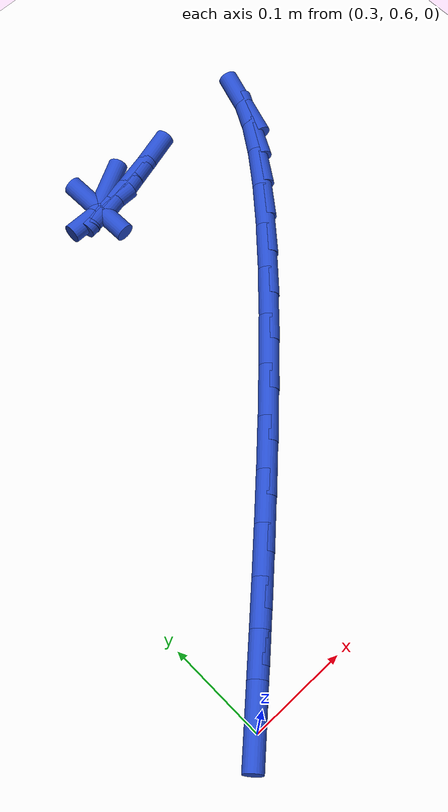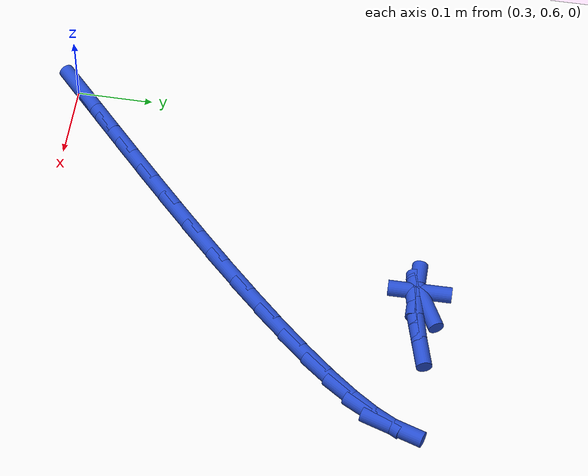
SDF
<sdf version="1.6">
 <world name="default">
  <model name="ground_plane">
   <static>1</static>
   <link name="link">
    <collision name="collision">
     <geometry><plane><normal>0 0 1</normal><size>100 100</size></plane></geometry>
     <surface><friction><ode><mu>100</mu><mu2>50</mu2></ode></friction></surface>
    </collision>
    <visual name="visual">
     <cast_shadows>0</cast_shadows>
     <geometry><plane><normal>0 0 1</normal><size>100 100</size></plane></geometry>
     <material>
      <script><uri>file://media/materials/scripts/gazebo.material</uri><name>Gazebo/WhiteGlow</name></script>
     </material>
    </visual>
   </link>
  </model>
  <model name="line">
   <link name="link_21">
    <pose>0.3010831064590433 0.6039293310111634 0.01 0 1.57 0.7397274515082792</pose>
    <collision name="collision">
     <geometry><cylinder><radius>0.01</radius><length>0.08</length></cylinder></geometry>
    </collision>
    <visual name="visual">
     <material>
      <script><name>Gazebo/Blue</name><uri>file://media/materials/scripts/gazebo.material</uri></script>
     </material>
     <geometry><cylinder><radius>0.01</radius><length>0.08</length></cylinder></geometry>
    </visual>
   </link>
   <link name="link_22">
    <pose>0.33441329645676837 0.6343461249876132 0.01 0 1.57 0.7400832182587512</pose>
    <collision name="collision">
     <geometry><cylinder><radius>0.01</radius><length>0.08</length></cylinder></geometry>
    </collision>
    <visual name="visual">
     <material>
      <script><name>Gazebo/Blue</name><uri>file://media/materials/scripts/gazebo.material</uri></script>
     </material>
     <geometry><cylinder><radius>0.01</radius><length>0.08</length></cylinder></geometry>
    </visual>
   </link>
   <link name="link_23">
    <pose>0.36988198044958814 0.666737622033864 0.01 0 1.57 0.7432469256478808</pose>
    <collision name="collision">
     <geometry><cylinder><radius>0.01</radius><length>0.08</length></cylinder></geometry>
    </collision>
    <visual name="visual">
     <material>
      <script><name>Gazebo/Blue</name><uri>file://media/materials/scripts/gazebo.material</uri></script>
     </material>
     <geometry><cylinder><radius>0.01</radius><length>0.08</length></cylinder></geometry>
    </visual>
   </link>
   <link name="link_24">
    <pose>0.40736722309887724 0.7011888560704462 0.01 0 1.57 0.7483380536034715</pose>
    <collision name="collision">
     <geometry><cylinder><radius>0.01</radius><length>0.08</length></cylinder></geometry>
    </collision>
    <visual name="visual">
     <material>
      <script><name>Gazebo/Blue</name><uri>file://media/materials/scripts/gazebo.material</uri></script>
     </material>
     <geometry><cylinder><radius>0.01</radius><length>0.08</length></cylinder></geometry>
    </visual>
   </link>
   <link name="link_25">
    <pose>0.44624284087430577 0.7372847487156237 0.01 0 1.57 0.7552770348175272</pose>
    <collision name="collision">
     <geometry><cylinder><radius>0.01</radius><length>0.08</length></cylinder></geometry>
    </collision>
    <visual name="visual">
     <material>
      <script><name>Gazebo/Blue</name><uri>file://media/materials/scripts/gazebo.material</uri></script>
     </material>
     <geometry><cylinder><radius>0.01</radius><length>0.08</length></cylinder></geometry>
    </visual>
   </link>
   <link name="link_26">
    <pose>0.4857929780434317 0.7745212848850892 0.01 0 1.57 0.7642641344676553</pose>
    <collision name="collision">
     <geometry><cylinder><radius>0.01</radius><length>0.08</length></cylinder></geometry>
    </collision>
    <visual name="visual">
     <material>
      <script><name>Gazebo/Blue</name><uri>file://media/materials/scripts/gazebo.material</uri></script>
     </material>
     <geometry><cylinder><radius>0.01</radius><length>0.08</length></cylinder></geometry>
    </visual>
   </link>
   <link name="link_27">
    <pose>0.5253017788738142 0.8123944494945362 0.01 0 1.57 0.775681739288513</pose>
    <collision name="collision">
     <geometry><cylinder><radius>0.01</radius><length>0.08</length></cylinder></geometry>
    </collision>
    <visual name="visual">
     <material>
      <script><name>Gazebo/Blue</name><uri>file://media/materials/scripts/gazebo.material</uri></script>
     </material>
     <geometry><cylinder><radius>0.01</radius><length>0.08</length></cylinder></geometry>
    </visual>
   </link>
   <link name="link_28">
    <pose>0.5640533876330114 0.8504002274596576 0.01 0 1.57 0.7901478450757111</pose>
    <collision name="collision">
     <geometry><cylinder><radius>0.01</radius><length>0.08</length></cylinder></geometry>
    </collision>
    <visual name="visual">
     <material>
      <script><name>Gazebo/Blue</name><uri>file://media/materials/scripts/gazebo.material</uri></script>
     </material>
     <geometry><cylinder><radius>0.01</radius><length>0.08</length></cylinder></geometry>
    </visual>
   </link>
   <link name="link_29">
    <pose>0.6013319485885817 0.8880346036961467 0.01 0 1.57 0.8086275839689925</pose>
    <collision name="collision">
     <geometry><cylinder><radius>0.01</radius><length>0.08</length></cylinder></geometry>
    </collision>
    <visual name="visual">
     <material>
      <script><name>Gazebo/Blue</name><uri>file://media/materials/scripts/gazebo.material</uri></script>
     </material>
     <geometry><cylinder><radius>0.01</radius><length>0.08</length></cylinder></geometry>
    </visual>
   </link>
   <link name="link_30">
    <pose>0.6364216060080834 0.9247935631196958 0.01 0 1.57 0.8326456880423339</pose>
    <collision name="collision">
     <geometry><cylinder><radius>0.01</radius><length>0.08</length></cylinder></geometry>
    </collision>
    <visual name="visual">
     <material>
      <script><name>Gazebo/Blue</name><uri>file://media/materials/scripts/gazebo.material</uri></script>
     </material>
     <geometry><cylinder><radius>0.01</radius><length>0.08</length></cylinder></geometry>
    </visual>
   </link>
   <link name="link_31">
    <pose>0.6686065041590754 0.960173090645999 0.01 0 1.57 0.8646992603622173</pose>
    <collision name="collision">
     <geometry><cylinder><radius>0.01</radius><length>0.08</length></cylinder></geometry>
    </collision>
    <visual name="visual">
     <material>
      <script><name>Gazebo/Blue</name><uri>file://media/materials/scripts/gazebo.material</uri></script>
     </material>
     <geometry><cylinder><radius>0.01</radius><length>0.08</length></cylinder></geometry>
    </visual>
   </link>
   <link name="link_32">
    <pose>0.6971707873091159 0.993669171190749 0.01 0 1.57 0.9091081395844214</pose>
    <collision name="collision">
     <geometry><cylinder><radius>0.01</radius><length>0.08</length></cylinder></geometry>
    </collision>
    <visual name="visual">
     <material>
      <script><name>Gazebo/Blue</name><uri>file://media/materials/scripts/gazebo.material</uri></script>
     </material>
     <geometry><cylinder><radius>0.01</radius><length>0.08</length></cylinder></geometry>
    </visual>
   </link>
   <link name="link_33">
    <pose>0.7213985997257629 1.0247777896696384 0.01 0 1.57 0.9739146564178902</pose>
    <collision name="collision">
     <geometry><cylinder><radius>0.01</radius><length>0.08</length></cylinder></geometry>
    </collision>
    <visual name="visual">
     <material>
      <script><name>Gazebo/Blue</name><uri>file://media/materials/scripts/gazebo.material</uri></script>
     </material>
     <geometry><cylinder><radius>0.01</radius><length>0.08</length></cylinder></geometry>
    </visual>
   </link>
   <link name="link_34">
    <pose>0.7405740856765752 1.0529949309983604 0.01 0 1.57 1.0755503664429282</pose>
    <collision name="collision">
     <geometry><cylinder><radius>0.01</radius><length>0.08</length></cylinder></geometry>
    </collision>
    <visual name="visual">
     <material>
      <script><name>Gazebo/Blue</name><uri>file://media/materials/scripts/gazebo.material</uri></script>
     </material>
     <geometry><cylinder><radius>0.01</radius><length>0.08</length></cylinder></geometry>
    </visual>
   </link>
   <link name="link_35">
    <pose>0.7539813894291112 1.0778165800926083 0.01 0 1.57 1.25123180687238</pose>
    <collision name="collision">
     <geometry><cylinder><radius>0.01</radius><length>0.08</length></cylinder></geometry>
    </collision>
    <visual name="visual">
     <material>
      <script><name>Gazebo/Blue</name><uri>file://media/materials/scripts/gazebo.material</uri></script>
     </material>
     <geometry><cylinder><radius>0.01</radius><length>0.08</length></cylinder></geometry>
    </visual>
   </link>
   <link name="link_44">
    <pose>0.5702767274041195 1.096339044037277 0.01 0 1.57 0.47408787551091924</pose>
    <collision name="collision">
     <geometry><cylinder><radius>0.01</radius><length>0.08</length></cylinder></geometry>
    </collision>
    <visual name="visual">
     <material>
      <script><name>Gazebo/Blue</name><uri>file://media/materials/scripts/gazebo.material</uri></script>
     </material>
     <geometry><cylinder><radius>0.01</radius><length>0.08</length></cylinder></geometry>
    </visual>
   </link>
   <link name="link_45">
    <pose>0.5549633225509331 1.0884814405461478 0.01 0 1.57 -1.558439855262049</pose>
    <collision name="collision">
     <geometry><cylinder><radius>0.01</radius><length>0.08</length></cylinder></geometry>
    </collision>
    <visual name="visual">
     <material>
      <script><name>Gazebo/Blue</name><uri>file://media/materials/scripts/gazebo.material</uri></script>
     </material>
     <geometry><cylinder><radius>0.01</radius><length>0.08</length></cylinder></geometry>
    </visual>
   </link>
   <link name="link_46">
    <pose>0.5550122018490914 1.0845258768292934 0.01 0 1.57 -0.006764573152920737</pose>
    <collision name="collision">
     <geometry><cylinder><radius>0.01</radius><length>0.08</length></cylinder></geometry>
    </collision>
    <visual name="visual">
     <material>
      <script><name>Gazebo/Blue</name><uri>file://media/materials/scripts/gazebo.material</uri></script>
     </material>
     <geometry><cylinder><radius>0.01</radius><length>0.08</length></cylinder></geometry>
    </visual>
   </link>
   <link name="link_47">
    <pose>0.5683839302516518 1.084435421414599 0.01 0 1.57 0.1494776019934119</pose>
    <collision name="collision">
     <geometry><cylinder><radius>0.01</radius><length>0.08</length></cylinder></geometry>
    </collision>
    <visual name="visual">
     <material>
      <script><name>Gazebo/Blue</name><uri>file://media/materials/scripts/gazebo.material</uri></script>
     </material>
     <geometry><cylinder><radius>0.01</radius><length>0.08</length></cylinder></geometry>
    </visual>
   </link>
   <link name="link_48">
    <pose>0.592866511844081 1.0881225209625913 0.01 0 1.57 0.21749831749132445</pose>
    <collision name="collision">
     <geometry><cylinder><radius>0.01</radius><length>0.08</length></cylinder></geometry>
    </collision>
    <visual name="visual">
     <material>
      <script><name>Gazebo/Blue</name><uri>file://media/materials/scripts/gazebo.material</uri></script>
     </material>
     <geometry><cylinder><radius>0.01</radius><length>0.08</length></cylinder></geometry>
    </visual>
   </link>
   <link name="link_49">
    <pose>0.6262479507118455 1.095499622133796 0.01 0 1.57 0.2674556698785728</pose>
    <collision name="collision">
     <geometry><cylinder><radius>0.01</radius><length>0.08</length></cylinder></geometry>
    </collision>
    <visual name="visual">
     <material>
      <script><name>Gazebo/Blue</name><uri>file://media/materials/scripts/gazebo.material</uri></script>
     </material>
     <geometry><cylinder><radius>0.01</radius><length>0.08</length></cylinder></geometry>
    </visual>
   </link>
  </model>
 </world>
</sdf>
